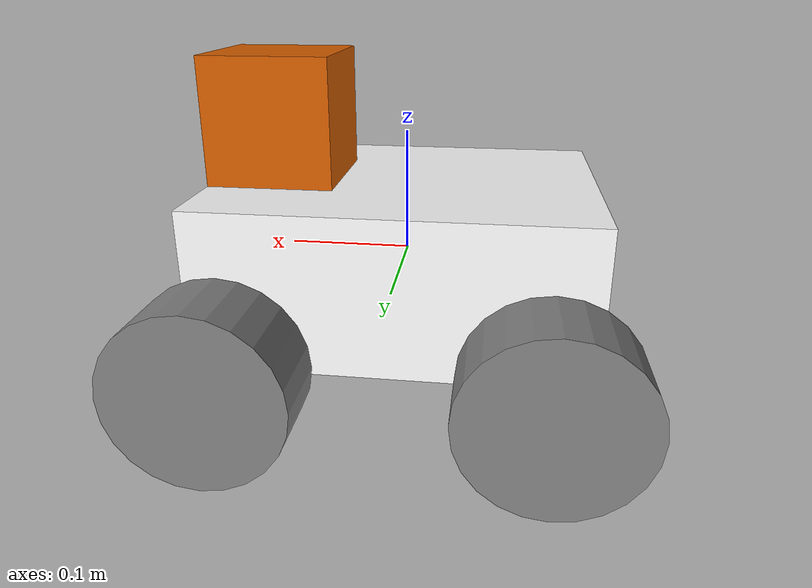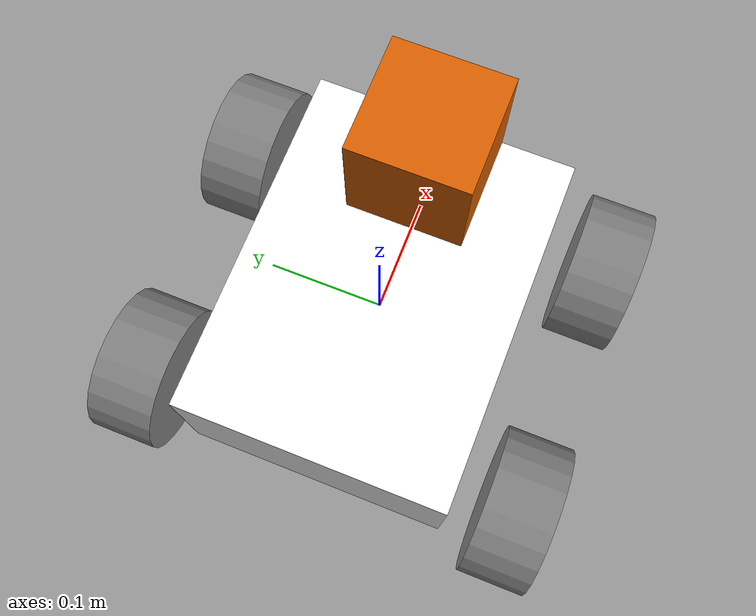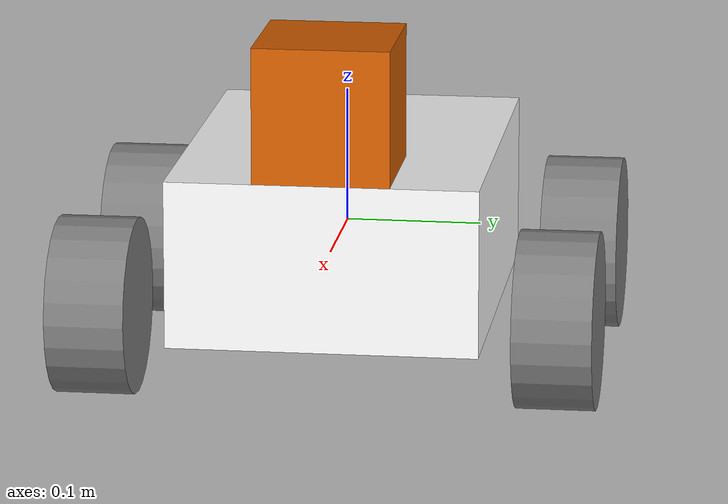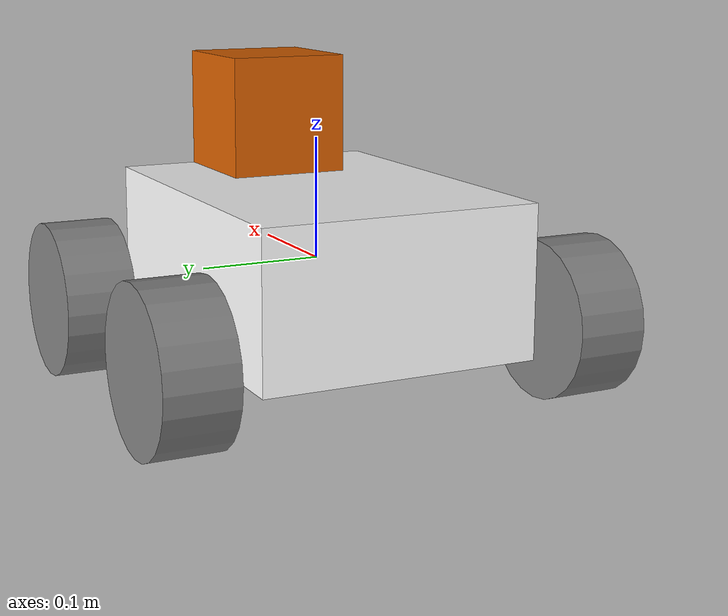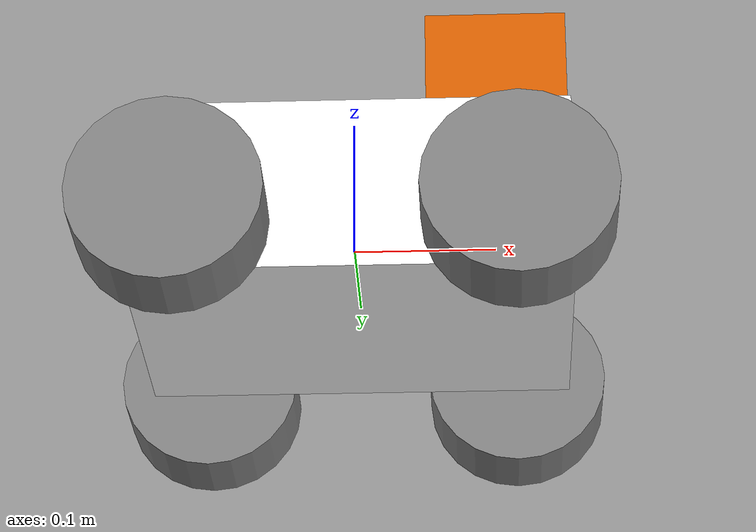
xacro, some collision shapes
<?xml version='1.0'?>

<robot name="rover" xmlns:xacro="http://www.ros.org/wiki/xacro">

  <link name="robot_footprint"></link>

  <joint name="robot_footprint_joint" type="fixed">
    <origin xyz="0 0 0" rpy="0 0 0" />
    <parent link="robot_footprint"/>
    <child link="chassis" />
  </joint>

  <xacro:property name="chassis_length" value="0.305"/>
  <xacro:property name="chassis_width" value="0.2286"/>
  <xacro:property name="chassis_height" value="0.124"/>
  <xacro:property name="chassis_mass" value="2.98"/>

  <xacro:property name="wheel_length" value="0.058"/>
  <xacro:property name="wheel_mass" value="0.135"/>
  <xacro:property name="wheel_radius" value="0.065"/>
  <xacro:property name="wheel_x" value="0.115"/>
  <xacro:property name="wheel_y" value="0.169"/>
  <xacro:property name="wheel_z" value="-0.041"/>

  <xacro:property name="lidar_z" value="${0.05 + (chassis_height / 2)}"/>
  <xacro:property name="lidar_x" value="${(chassis_length / 2) - 0.05}"/>

  <xacro:property name="skid_steer_wheel_spec">
    <wheelSeparation>0.336</wheelSeparation>
    <wheelDiameter>0.13</wheelDiameter>
    <torque>5</torque>
  </xacro:property>

  <material name="white">
    <color rgba="1 1 1 1"/>
  </material>

  <material name="gray">
    <color rgba="0.5 0.5 0.5 1"/>
  </material>

  <xacro:macro name="wheel" params="prefix x_reflect y_reflect">
    <link name='${prefix}_wheel'>
      <visual name='visual'>
        <origin xyz="0 0 0" rpy=" 0 1.5707 1.5707"/>
        <geometry>
          <cylinder radius="${wheel_radius}" length="${wheel_length}"/>
        </geometry>
        <material name="gray"/>
      </visual>
      <collision name='collision'>
        <origin xyz="0 0 0" rpy=" 0 1.5707 1.5707"/>
        <geometry>
          <cylinder radius="${wheel_radius}" length="${wheel_length}"/>
        </geometry>
      </collision>
      <inertial>
        <mass value="${wheel_mass}"/>
        <origin xyz="0 0 0" rpy=" 0 0 0"/>
        <inertia
            ixx="0.000180439" ixy="0" ixz="0"
            iyy="0.000180439" iyz="0"
            izz="0.000285188"
        />
      </inertial>
    </link>
    <joint type="continuous" name="${prefix}_wheel_joint">
      <origin xyz="${x_reflect * wheel_x} ${y_reflect * wheel_y} ${wheel_z}" rpy="0 0 0"/>
      <child link="${prefix}_wheel"/>
      <parent link="chassis"/>
      <axis xyz="0 1 0" rpy="0 0 0"/>
      <limit effort="10000" velocity="1000"/>
      <dynamics damping="0.0" friction="0.0"/>
    </joint>
  </xacro:macro>

  <xacro:wheel prefix="front_left" x_reflect="1" y_reflect="1"/>
  <xacro:wheel prefix="front_right" x_reflect="1" y_reflect="-1"/>
  <xacro:wheel prefix="back_left" x_reflect="-1" y_reflect="1"/>
  <xacro:wheel prefix="back_right" x_reflect="-1" y_reflect="-1"/>

  <link name="hokuyo">
    <visual name='hokuyo_visual'>
      <origin xyz="0 0 0" rpy=" 0 0 0"/>
      <geometry>
        <mesh filename="package://my_robot/meshes/hokuyo.dae"/>
      </geometry>
    </visual>
    <collision name='hokuyo_collision'>
      <origin xyz="0 0 0" rpy=" 0 0 0"/>
      <geometry>
        <box size="0.1 0.1 0.1"/>
      </geometry>
    </collision>
    <inertial>
      <mass value="1e-5"/>
      <origin xyz="0.0 0 0" rpy=" 0 0 0"/>
      <inertia
          ixx="1e-6" ixy="0" ixz="0"
          iyy="1e-6"   iyz="0"
          izz="1e-6"
      />
    </inertial>
  </link>
  <joint type="fixed" name="hokuyo_joint">
    <origin xyz="${lidar_x} 0 ${lidar_z}" rpy="0 0 0"/>
    <child link="hokuyo"/>
    <parent link="chassis"/>
    <axis xyz="0 1 0" rpy="0 0 0"/>
  </joint>

  <link name='chassis'>
    <pose>0 0 0.1 0 0 0</pose>

    <inertial>
      <mass value="${chassis_mass}"/>
      <origin xyz="0.0 0 0" rpy=" 0 0 0"/>
      <inertia
          ixx="1e-3" ixy="0" ixz="0"
          iyy="1e-3" iyz="0"
          izz="1e-3"
      />
    </inertial>

    <collision name='collision'>
      <origin xyz="0 0 0" rpy=" 0 0 0"/>
      <geometry>
        <box size="${chassis_length} ${chassis_width} ${chassis_height}"/>
      </geometry>
    </collision>

    <visual name='chassis_visual'>
      <origin xyz="0 0 0" rpy=" 0 0 0"/>
      <geometry>
        <box size="${chassis_length} ${chassis_width} ${chassis_height}"/>
      </geometry>
      <material name="white"/>
    </visual>
  </link>

  <xacro:include filename="$(find my_robot)/urdf/rover.gazebo" />

</robot>
